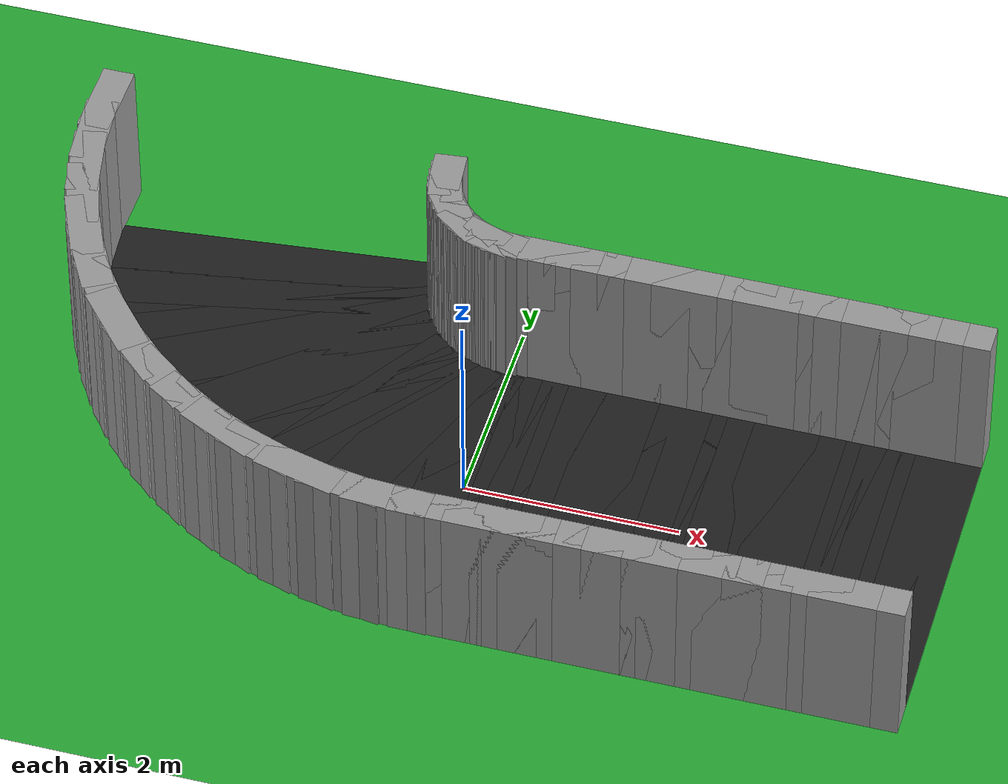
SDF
<sdf version="1.6">
 <world name="loop_extreme">
  <include><uri>model://sun</uri></include>
  <model name="ground_plane">
   <static>true</static>
   <link name="link">
    <collision name="collision">
     <surface><friction><ode><mu>100</mu><mu2>50</mu2></ode></friction></surface>
     <geometry><plane><normal>0 0 1</normal><size>120 120</size></plane></geometry>
    </collision>
    <visual name="visual">
     <geometry><plane><normal>0 0 1</normal><size>120 120</size></plane></geometry>
     <material>
      <script><uri>file://media/materials/scripts/gazebo.material</uri><name>Gazebo/Green</name></script>
     </material>
    </visual>
   </link>
  </model>
  <model name="asphalt_0">
   <static>true</static>
   <pose>0.125 0.000 0.005 0 0 0.00000</pose>
   <link name="link">
    <visual name="visual">
     <geometry><box><size>0.610 3.000 0.010</size></box></geometry>
     <material>
      <script><uri>file://media/materials/scripts/gazebo.material</uri><name>Gazebo/Black</name></script>
     </material>
    </visual>
   </link>
  </model>
  <model name="curbL_0">
   <static>true</static>
   <pose>0.125 1.650 0.750 0 0 0.00000</pose>
   <link name="link">
    <collision name="collision"><geometry><box><size>0.610 0.300 1.500</size></box></geometry></collision>
    <visual name="visual">
     <geometry><box><size>0.610 0.300 1.500</size></box></geometry>
     <material>
      <script><uri>file://media/materials/scripts/gazebo.material</uri><name>Gazebo/Grey</name></script>
     </material>
    </visual>
   </link>
  </model>
  <model name="curbR_0">
   <static>true</static>
   <pose>0.125 -1.650 0.750 0 0 0.00000</pose>
   <link name="link">
    <collision name="collision"><geometry><box><size>0.610 0.300 1.500</size></box></geometry></collision>
    <visual name="visual">
     <geometry><box><size>0.610 0.300 1.500</size></box></geometry>
     <material>
      <script><uri>file://media/materials/scripts/gazebo.material</uri><name>Gazebo/Grey</name></script>
     </material>
    </visual>
   </link>
  </model>
  <model name="asphalt_1">
   <static>true</static>
   <pose>0.375 0.000 0.005 0 0 0.00000</pose>
   <link name="link">
    <visual name="visual">
     <geometry><box><size>0.610 3.000 0.010</size></box></geometry>
     <material>
      <script><uri>file://media/materials/scripts/gazebo.material</uri><name>Gazebo/Black</name></script>
     </material>
    </visual>
   </link>
  </model>
  <model name="curbL_1">
   <static>true</static>
   <pose>0.375 1.650 0.750 0 0 0.00000</pose>
   <link name="link">
    <collision name="collision"><geometry><box><size>0.610 0.300 1.500</size></box></geometry></collision>
    <visual name="visual">
     <geometry><box><size>0.610 0.300 1.500</size></box></geometry>
     <material>
      <script><uri>file://media/materials/scripts/gazebo.material</uri><name>Gazebo/Grey</name></script>
     </material>
    </visual>
   </link>
  </model>
  <model name="curbR_1">
   <static>true</static>
   <pose>0.375 -1.650 0.750 0 0 0.00000</pose>
   <link name="link">
    <collision name="collision"><geometry><box><size>0.610 0.300 1.500</size></box></geometry></collision>
    <visual name="visual">
     <geometry><box><size>0.610 0.300 1.500</size></box></geometry>
     <material>
      <script><uri>file://media/materials/scripts/gazebo.material</uri><name>Gazebo/Grey</name></script>
     </material>
    </visual>
   </link>
  </model>
  <model name="asphalt_2">
   <static>true</static>
   <pose>0.625 0.000 0.005 0 0 0.00000</pose>
   <link name="link">
    <visual name="visual">
     <geometry><box><size>0.610 3.000 0.010</size></box></geometry>
     <material>
      <script><uri>file://media/materials/scripts/gazebo.material</uri><name>Gazebo/Black</name></script>
     </material>
    </visual>
   </link>
  </model>
  <model name="curbL_2">
   <static>true</static>
   <pose>0.625 1.650 0.750 0 0 0.00000</pose>
   <link name="link">
    <collision name="collision"><geometry><box><size>0.610 0.300 1.500</size></box></geometry></collision>
    <visual name="visual">
     <geometry><box><size>0.610 0.300 1.500</size></box></geometry>
     <material>
      <script><uri>file://media/materials/scripts/gazebo.material</uri><name>Gazebo/Grey</name></script>
     </material>
    </visual>
   </link>
  </model>
  <model name="curbR_2">
   <static>true</static>
   <pose>0.625 -1.650 0.750 0 0 0.00000</pose>
   <link name="link">
    <collision name="collision"><geometry><box><size>0.610 0.300 1.500</size></box></geometry></collision>
    <visual name="visual">
     <geometry><box><size>0.610 0.300 1.500</size></box></geometry>
     <material>
      <script><uri>file://media/materials/scripts/gazebo.material</uri><name>Gazebo/Grey</name></script>
     </material>
    </visual>
   </link>
  </model>
  <model name="asphalt_3">
   <static>true</static>
   <pose>0.875 0.000 0.005 0 0 0.00000</pose>
   <link name="link">
    <visual name="visual">
     <geometry><box><size>0.610 3.000 0.010</size></box></geometry>
     <material>
      <script><uri>file://media/materials/scripts/gazebo.material</uri><name>Gazebo/Black</name></script>
     </material>
    </visual>
   </link>
  </model>
  <model name="curbL_3">
   <static>true</static>
   <pose>0.875 1.650 0.750 0 0 0.00000</pose>
   <link name="link">
    <collision name="collision"><geometry><box><size>0.610 0.300 1.500</size></box></geometry></collision>
    <visual name="visual">
     <geometry><box><size>0.610 0.300 1.500</size></box></geometry>
     <material>
      <script><uri>file://media/materials/scripts/gazebo.material</uri><name>Gazebo/Grey</name></script>
     </material>
    </visual>
   </link>
  </model>
  <model name="curbR_3">
   <static>true</static>
   <pose>0.875 -1.650 0.750 0 0 0.00000</pose>
   <link name="link">
    <collision name="collision"><geometry><box><size>0.610 0.300 1.500</size></box></geometry></collision>
    <visual name="visual">
     <geometry><box><size>0.610 0.300 1.500</size></box></geometry>
     <material>
      <script><uri>file://media/materials/scripts/gazebo.material</uri><name>Gazebo/Grey</name></script>
     </material>
    </visual>
   </link>
  </model>
  <model name="asphalt_4">
   <static>true</static>
   <pose>1.125 0.000 0.005 0 0 0.00000</pose>
   <link name="link">
    <visual name="visual">
     <geometry><box><size>0.610 3.000 0.010</size></box></geometry>
     <material>
      <script><uri>file://media/materials/scripts/gazebo.material</uri><name>Gazebo/Black</name></script>
     </material>
    </visual>
   </link>
  </model>
  <model name="curbL_4">
   <static>true</static>
   <pose>1.125 1.650 0.750 0 0 0.00000</pose>
   <link name="link">
    <collision name="collision"><geometry><box><size>0.610 0.300 1.500</size></box></geometry></collision>
    <visual name="visual">
     <geometry><box><size>0.610 0.300 1.500</size></box></geometry>
     <material>
      <script><uri>file://media/materials/scripts/gazebo.material</uri><name>Gazebo/Grey</name></script>
     </material>
    </visual>
   </link>
  </model>
  <model name="curbR_4">
   <static>true</static>
   <pose>1.125 -1.650 0.750 0 0 0.00000</pose>
   <link name="link">
    <collision name="collision"><geometry><box><size>0.610 0.300 1.500</size></box></geometry></collision>
    <visual name="visual">
     <geometry><box><size>0.610 0.300 1.500</size></box></geometry>
     <material>
      <script><uri>file://media/materials/scripts/gazebo.material</uri><name>Gazebo/Grey</name></script>
     </material>
    </visual>
   </link>
  </model>
  <model name="asphalt_5">
   <static>true</static>
   <pose>1.375 0.000 0.005 0 0 0.00000</pose>
   <link name="link">
    <visual name="visual">
     <geometry><box><size>0.610 3.000 0.010</size></box></geometry>
     <material>
      <script><uri>file://media/materials/scripts/gazebo.material</uri><name>Gazebo/Black</name></script>
     </material>
    </visual>
   </link>
  </model>
  <model name="curbL_5">
   <static>true</static>
   <pose>1.375 1.650 0.750 0 0 0.00000</pose>
   <link name="link">
    <collision name="collision"><geometry><box><size>0.610 0.300 1.500</size></box></geometry></collision>
    <visual name="visual">
     <geometry><box><size>0.610 0.300 1.500</size></box></geometry>
     <material>
      <script><uri>file://media/materials/scripts/gazebo.material</uri><name>Gazebo/Grey</name></script>
     </material>
    </visual>
   </link>
  </model>
  <model name="curbR_5">
   <static>true</static>
   <pose>1.375 -1.650 0.750 0 0 0.00000</pose>
   <link name="link">
    <collision name="collision"><geometry><box><size>0.610 0.300 1.500</size></box></geometry></collision>
    <visual name="visual">
     <geometry><box><size>0.610 0.300 1.500</size></box></geometry>
     <material>
      <script><uri>file://media/materials/scripts/gazebo.material</uri><name>Gazebo/Grey</name></script>
     </material>
    </visual>
   </link>
  </model>
  <model name="asphalt_6">
   <static>true</static>
   <pose>1.625 0.000 0.005 0 0 0.00000</pose>
   <link name="link">
    <visual name="visual">
     <geometry><box><size>0.610 3.000 0.010</size></box></geometry>
     <material>
      <script><uri>file://media/materials/scripts/gazebo.material</uri><name>Gazebo/Black</name></script>
     </material>
    </visual>
   </link>
  </model>
  <model name="curbL_6">
   <static>true</static>
   <pose>1.625 1.650 0.750 0 0 0.00000</pose>
   <link name="link">
    <collision name="collision"><geometry><box><size>0.610 0.300 1.500</size></box></geometry></collision>
    <visual name="visual">
     <geometry><box><size>0.610 0.300 1.500</size></box></geometry>
     <material>
      <script><uri>file://media/materials/scripts/gazebo.material</uri><name>Gazebo/Grey</name></script>
     </material>
    </visual>
   </link>
  </model>
  <model name="curbR_6">
   <static>true</static>
   <pose>1.625 -1.650 0.750 0 0 0.00000</pose>
   <link name="link">
    <collision name="collision"><geometry><box><size>0.610 0.300 1.500</size></box></geometry></collision>
    <visual name="visual">
     <geometry><box><size>0.610 0.300 1.500</size></box></geometry>
     <material>
      <script><uri>file://media/materials/scripts/gazebo.material</uri><name>Gazebo/Grey</name></script>
     </material>
    </visual>
   </link>
  </model>
  <model name="asphalt_7">
   <static>true</static>
   <pose>1.875 0.000 0.005 0 0 0.00000</pose>
   <link name="link">
    <visual name="visual">
     <geometry><box><size>0.610 3.000 0.010</size></box></geometry>
     <material>
      <script><uri>file://media/materials/scripts/gazebo.material</uri><name>Gazebo/Black</name></script>
     </material>
    </visual>
   </link>
  </model>
  <model name="curbL_7">
   <static>true</static>
   <pose>1.875 1.650 0.750 0 0 0.00000</pose>
   <link name="link">
    <collision name="collision"><geometry><box><size>0.610 0.300 1.500</size></box></geometry></collision>
    <visual name="visual">
     <geometry><box><size>0.610 0.300 1.500</size></box></geometry>
     <material>
      <script><uri>file://media/materials/scripts/gazebo.material</uri><name>Gazebo/Grey</name></script>
     </material>
    </visual>
   </link>
  </model>
  <model name="curbR_7">
   <static>true</static>
   <pose>1.875 -1.650 0.750 0 0 0.00000</pose>
   <link name="link">
    <collision name="collision"><geometry><box><size>0.610 0.300 1.500</size></box></geometry></collision>
    <visual name="visual">
     <geometry><box><size>0.610 0.300 1.500</size></box></geometry>
     <material>
      <script><uri>file://media/materials/scripts/gazebo.material</uri><name>Gazebo/Grey</name></script>
     </material>
    </visual>
   </link>
  </model>
  <model name="asphalt_8">
   <static>true</static>
   <pose>2.125 0.000 0.005 0 0 0.00000</pose>
   <link name="link">
    <visual name="visual">
     <geometry><box><size>0.610 3.000 0.010</size></box></geometry>
     <material>
      <script><uri>file://media/materials/scripts/gazebo.material</uri><name>Gazebo/Black</name></script>
     </material>
    </visual>
   </link>
  </model>
  <model name="curbL_8">
   <static>true</static>
   <pose>2.125 1.650 0.750 0 0 0.00000</pose>
   <link name="link">
    <collision name="collision"><geometry><box><size>0.610 0.300 1.500</size></box></geometry></collision>
    <visual name="visual">
     <geometry><box><size>0.610 0.300 1.500</size></box></geometry>
     <material>
      <script><uri>file://media/materials/scripts/gazebo.material</uri><name>Gazebo/Grey</name></script>
     </material>
    </visual>
   </link>
  </model>
  <model name="curbR_8">
   <static>true</static>
   <pose>2.125 -1.650 0.750 0 0 0.00000</pose>
   <link name="link">
    <collision name="collision"><geometry><box><size>0.610 0.300 1.500</size></box></geometry></collision>
    <visual name="visual">
     <geometry><box><size>0.610 0.300 1.500</size></box></geometry>
     <material>
      <script><uri>file://media/materials/scripts/gazebo.material</uri><name>Gazebo/Grey</name></script>
     </material>
    </visual>
   </link>
  </model>
  <model name="asphalt_9">
   <static>true</static>
   <pose>2.375 0.000 0.005 0 0 0.00000</pose>
   <link name="link">
    <visual name="visual">
     <geometry><box><size>0.610 3.000 0.010</size></box></geometry>
     <material>
      <script><uri>file://media/materials/scripts/gazebo.material</uri><name>Gazebo/Black</name></script>
     </material>
    </visual>
   </link>
  </model>
  <model name="curbL_9">
   <static>true</static>
   <pose>2.375 1.650 0.750 0 0 0.00000</pose>
   <link name="link">
    <collision name="collision"><geometry><box><size>0.610 0.300 1.500</size></box></geometry></collision>
    <visual name="visual">
     <geometry><box><size>0.610 0.300 1.500</size></box></geometry>
     <material>
      <script><uri>file://media/materials/scripts/gazebo.material</uri><name>Gazebo/Grey</name></script>
     </material>
    </visual>
   </link>
  </model>
  <model name="curbR_9">
   <static>true</static>
   <pose>2.375 -1.650 0.750 0 0 0.00000</pose>
   <link name="link">
    <collision name="collision"><geometry><box><size>0.610 0.300 1.500</size></box></geometry></collision>
    <visual name="visual">
     <geometry><box><size>0.610 0.300 1.500</size></box></geometry>
     <material>
      <script><uri>file://media/materials/scripts/gazebo.material</uri><name>Gazebo/Grey</name></script>
     </material>
    </visual>
   </link>
  </model>
  <model name="asphalt_10">
   <static>true</static>
   <pose>2.625 0.000 0.005 0 0 0.00000</pose>
   <link name="link">
    <visual name="visual">
     <geometry><box><size>0.610 3.000 0.010</size></box></geometry>
     <material>
      <script><uri>file://media/materials/scripts/gazebo.material</uri><name>Gazebo/Black</name></script>
     </material>
    </visual>
   </link>
  </model>
  <model name="curbL_10">
   <static>true</static>
   <pose>2.625 1.650 0.750 0 0 0.00000</pose>
   <link name="link">
    <collision name="collision"><geometry><box><size>0.610 0.300 1.500</size></box></geometry></collision>
    <visual name="visual">
     <geometry><box><size>0.610 0.300 1.500</size></box></geometry>
     <material>
      <script><uri>file://media/materials/scripts/gazebo.material</uri><name>Gazebo/Grey</name></script>
     </material>
    </visual>
   </link>
  </model>
  <model name="curbR_10">
   <static>true</static>
   <pose>2.625 -1.650 0.750 0 0 0.00000</pose>
   <link name="link">
    <collision name="collision"><geometry><box><size>0.610 0.300 1.500</size></box></geometry></collision>
    <visual name="visual">
     <geometry><box><size>0.610 0.300 1.500</size></box></geometry>
     <material>
      <script><uri>file://media/materials/scripts/gazebo.material</uri><name>Gazebo/Grey</name></script>
     </material>
    </visual>
   </link>
  </model>
  <model name="asphalt_11">
   <static>true</static>
   <pose>2.875 0.000 0.005 0 0 0.00000</pose>
   <link name="link">
    <visual name="visual">
     <geometry><box><size>0.610 3.000 0.010</size></box></geometry>
     <material>
      <script><uri>file://media/materials/scripts/gazebo.material</uri><name>Gazebo/Black</name></script>
     </material>
    </visual>
   </link>
  </model>
  <model name="curbL_11">
   <static>true</static>
   <pose>2.875 1.650 0.750 0 0 0.00000</pose>
   <link name="link">
    <collision name="collision"><geometry><box><size>0.610 0.300 1.500</size></box></geometry></collision>
    <visual name="visual">
     <geometry><box><size>0.610 0.300 1.500</size></box></geometry>
     <material>
      <script><uri>file://media/materials/scripts/gazebo.material</uri><name>Gazebo/Grey</name></script>
     </material>
    </visual>
   </link>
  </model>
  <model name="curbR_11">
   <static>true</static>
   <pose>2.875 -1.650 0.750 0 0 0.00000</pose>
   <link name="link">
    <collision name="collision"><geometry><box><size>0.610 0.300 1.500</size></box></geometry></collision>
    <visual name="visual">
     <geometry><box><size>0.610 0.300 1.500</size></box></geometry>
     <material>
      <script><uri>file://media/materials/scripts/gazebo.material</uri><name>Gazebo/Grey</name></script>
     </material>
    </visual>
   </link>
  </model>
  <model name="asphalt_12">
   <static>true</static>
   <pose>3.125 0.000 0.005 0 0 0.00000</pose>
   <link name="link">
    <visual name="visual">
     <geometry><box><size>0.610 3.000 0.010</size></box></geometry>
     <material>
      <script><uri>file://media/materials/scripts/gazebo.material</uri><name>Gazebo/Black</name></script>
     </material>
    </visual>
   </link>
  </model>
  <model name="curbL_12">
   <static>true</static>
   <pose>3.125 1.650 0.750 0 0 0.00000</pose>
   <link name="link">
    <collision name="collision"><geometry><box><size>0.610 0.300 1.500</size></box></geometry></collision>
    <visual name="visual">
     <geometry><box><size>0.610 0.300 1.500</size></box></geometry>
     <material>
      <script><uri>file://media/materials/scripts/gazebo.material</uri><name>Gazebo/Grey</name></script>
     </material>
    </visual>
   </link>
  </model>
  <model name="curbR_12">
   <static>true</static>
   <pose>3.125 -1.650 0.750 0 0 0.00000</pose>
   <link name="link">
    <collision name="collision"><geometry><box><size>0.610 0.300 1.500</size></box></geometry></collision>
    <visual name="visual">
     <geometry><box><size>0.610 0.300 1.500</size></box></geometry>
     <material>
      <script><uri>file://media/materials/scripts/gazebo.material</uri><name>Gazebo/Grey</name></script>
     </material>
    </visual>
   </link>
  </model>
  <model name="asphalt_13">
   <static>true</static>
   <pose>3.375 0.000 0.005 0 0 0.00000</pose>
   <link name="link">
    <visual name="visual">
     <geometry><box><size>0.610 3.000 0.010</size></box></geometry>
     <material>
      <script><uri>file://media/materials/scripts/gazebo.material</uri><name>Gazebo/Black</name></script>
     </material>
    </visual>
   </link>
  </model>
  <model name="curbL_13">
   <static>true</static>
   <pose>3.375 1.650 0.750 0 0 0.00000</pose>
   <link name="link">
    <collision name="collision"><geometry><box><size>0.610 0.300 1.500</size></box></geometry></collision>
    <visual name="visual">
     <geometry><box><size>0.610 0.300 1.500</size></box></geometry>
     <material>
      <script><uri>file://media/materials/scripts/gazebo.material</uri><name>Gazebo/Grey</name></script>
     </material>
    </visual>
   </link>
  </model>
  <model name="curbR_13">
   <static>true</static>
   <pose>3.375 -1.650 0.750 0 0 0.00000</pose>
   <link name="link">
    <collision name="collision"><geometry><box><size>0.610 0.300 1.500</size></box></geometry></collision>
    <visual name="visual">
     <geometry><box><size>0.610 0.300 1.500</size></box></geometry>
     <material>
      <script><uri>file://media/materials/scripts/gazebo.material</uri><name>Gazebo/Grey</name></script>
     </material>
    </visual>
   </link>
  </model>
  <model name="asphalt_14">
   <static>true</static>
   <pose>3.625 0.000 0.005 0 0 0.00000</pose>
   <link name="link">
    <visual name="visual">
     <geometry><box><size>0.610 3.000 0.010</size></box></geometry>
     <material>
      <script><uri>file://media/materials/scripts/gazebo.material</uri><name>Gazebo/Black</name></script>
     </material>
    </visual>
   </link>
  </model>
  <model name="curbL_14">
   <static>true</static>
   <pose>3.625 1.650 0.750 0 0 0.00000</pose>
   <link name="link">
    <collision name="collision"><geometry><box><size>0.610 0.300 1.500</size></box></geometry></collision>
    <visual name="visual">
     <geometry><box><size>0.610 0.300 1.500</size></box></geometry>
     <material>
      <script><uri>file://media/materials/scripts/gazebo.material</uri><name>Gazebo/Grey</name></script>
     </material>
    </visual>
   </link>
  </model>
  <model name="curbR_14">
   <static>true</static>
   <pose>3.625 -1.650 0.750 0 0 0.00000</pose>
   <link name="link">
    <collision name="collision"><geometry><box><size>0.610 0.300 1.500</size></box></geometry></collision>
    <visual name="visual">
     <geometry><box><size>0.610 0.300 1.500</size></box></geometry>
     <material>
      <script><uri>file://media/materials/scripts/gazebo.material</uri><name>Gazebo/Grey</name></script>
     </material>
    </visual>
   </link>
  </model>
  <model name="asphalt_15">
   <static>true</static>
   <pose>3.875 0.000 0.005 0 0 0.00000</pose>
   <link name="link">
    <visual name="visual">
     <geometry><box><size>0.610 3.000 0.010</size></box></geometry>
     <material>
      <script><uri>file://media/materials/scripts/gazebo.material</uri><name>Gazebo/Black</name></script>
     </material>
    </visual>
   </link>
  </model>
  <model name="curbL_15">
   <static>true</static>
   <pose>3.875 1.650 0.750 0 0 0.00000</pose>
   <link name="link">
    <collision name="collision"><geometry><box><size>0.610 0.300 1.500</size></box></geometry></collision>
    <visual name="visual">
     <geometry><box><size>0.610 0.300 1.500</size></box></geometry>
     <material>
      <script><uri>file://media/materials/scripts/gazebo.material</uri><name>Gazebo/Grey</name></script>
     </material>
    </visual>
   </link>
  </model>
  <model name="curbR_15">
   <static>true</static>
   <pose>3.875 -1.650 0.750 0 0 0.00000</pose>
   <link name="link">
    <collision name="collision"><geometry><box><size>0.610 0.300 1.500</size></box></geometry></collision>
    <visual name="visual">
     <geometry><box><size>0.610 0.300 1.500</size></box></geometry>
     <material>
      <script><uri>file://media/materials/scripts/gazebo.material</uri><name>Gazebo/Grey</name></script>
     </material>
    </visual>
   </link>
  </model>
  <model name="asphalt_16">
   <static>true</static>
   <pose>4.125 0.000 0.005 0 0 0.00000</pose>
   <link name="link">
    <visual name="visual">
     <geometry><box><size>0.610 3.000 0.010</size></box></geometry>
     <material>
      <script><uri>file://media/materials/scripts/gazebo.material</uri><name>Gazebo/Black</name></script>
     </material>
    </visual>
   </link>
  </model>
  <model name="curbL_16">
   <static>true</static>
   <pose>4.125 1.650 0.750 0 0 0.00000</pose>
   <link name="link">
    <collision name="collision"><geometry><box><size>0.610 0.300 1.500</size></box></geometry></collision>
    <visual name="visual">
     <geometry><box><size>0.610 0.300 1.500</size></box></geometry>
     <material>
      <script><uri>file://media/materials/scripts/gazebo.material</uri><name>Gazebo/Grey</name></script>
     </material>
    </visual>
   </link>
  </model>
  <model name="curbR_16">
   <static>true</static>
   <pose>4.125 -1.650 0.750 0 0 0.00000</pose>
   <link name="link">
    <collision name="collision"><geometry><box><size>0.610 0.300 1.500</size></box></geometry></collision>
    <visual name="visual">
     <geometry><box><size>0.610 0.300 1.500</size></box></geometry>
     <material>
      <script><uri>file://media/materials/scripts/gazebo.material</uri><name>Gazebo/Grey</name></script>
     </material>
    </visual>
   </link>
  </model>
  <model name="curbR_274">
   <static>true</static>
   <pose>-4.146 2.501 0.750 0 0 -1.57080</pose>
   <link name="link">
    <collision name="collision"><geometry><box><size>0.780 0.300 1.500</size></box></geometry></collision>
    <visual name="visual">
     <geometry><box><size>0.780 0.300 1.500</size></box></geometry>
     <material>
      <script><uri>file://media/materials/scripts/gazebo.material</uri><name>Gazebo/Grey</name></script>
     </material>
    </visual>
   </link>
  </model>
  <model name="asphalt_275">
   <static>true</static>
   <pose>-2.485 2.248 0.005 0 0 -1.46945</pose>
   <link name="link">
    <visual name="visual">
     <geometry><box><size>0.613 3.000 0.010</size></box></geometry>
     <material>
      <script><uri>file://media/materials/scripts/gazebo.material</uri><name>Gazebo/Black</name></script>
     </material>
    </visual>
   </link>
  </model>
  <model name="curbL_275">
   <static>true</static>
   <pose>-0.846 2.415 0.750 0 0 -1.46945</pose>
   <link name="link">
    <collision name="collision"><geometry><box><size>0.446 0.300 1.500</size></box></geometry></collision>
    <visual name="visual">
     <geometry><box><size>0.446 0.300 1.500</size></box></geometry>
     <material>
      <script><uri>file://media/materials/scripts/gazebo.material</uri><name>Gazebo/Grey</name></script>
     </material>
    </visual>
   </link>
  </model>
  <model name="curbR_275">
   <static>true</static>
   <pose>-4.124 2.082 0.750 0 0 -1.46945</pose>
   <link name="link">
    <collision name="collision"><geometry><box><size>0.780 0.300 1.500</size></box></geometry></collision>
    <visual name="visual">
     <geometry><box><size>0.780 0.300 1.500</size></box></geometry>
     <material>
      <script><uri>file://media/materials/scripts/gazebo.material</uri><name>Gazebo/Grey</name></script>
     </material>
    </visual>
   </link>
  </model>
  <model name="asphalt_276">
   <static>true</static>
   <pose>-2.447 1.998 0.005 0 0 -1.36811</pose>
   <link name="link">
    <visual name="visual">
     <geometry><box><size>0.613 3.000 0.010</size></box></geometry>
     <material>
      <script><uri>file://media/materials/scripts/gazebo.material</uri><name>Gazebo/Black</name></script>
     </material>
    </visual>
   </link>
  </model>
  <model name="curbL_276">
   <static>true</static>
   <pose>-0.833 2.330 0.750 0 0 -1.36811</pose>
   <link name="link">
    <collision name="collision"><geometry><box><size>0.446 0.300 1.500</size></box></geometry></collision>
    <visual name="visual">
     <geometry><box><size>0.446 0.300 1.500</size></box></geometry>
     <material>
      <script><uri>file://media/materials/scripts/gazebo.material</uri><name>Gazebo/Grey</name></script>
     </material>
    </visual>
   </link>
  </model>
  <model name="curbR_276">
   <static>true</static>
   <pose>-4.061 1.667 0.750 0 0 -1.36811</pose>
   <link name="link">
    <collision name="collision"><geometry><box><size>0.780 0.300 1.500</size></box></geometry></collision>
    <visual name="visual">
     <geometry><box><size>0.780 0.300 1.500</size></box></geometry>
     <material>
      <script><uri>file://media/materials/scripts/gazebo.material</uri><name>Gazebo/Grey</name></script>
     </material>
    </visual>
   </link>
  </model>
  <model name="asphalt_277">
   <static>true</static>
   <pose>-2.383 1.753 0.005 0 0 -1.26677</pose>
   <link name="link">
    <visual name="visual">
     <geometry><box><size>0.613 3.000 0.010</size></box></geometry>
     <material>
      <script><uri>file://media/materials/scripts/gazebo.material</uri><name>Gazebo/Black</name></script>
     </material>
    </visual>
   </link>
  </model>
  <model name="curbL_277">
   <static>true</static>
   <pose>-0.811 2.247 0.750 0 0 -1.26677</pose>
   <link name="link">
    <collision name="collision"><geometry><box><size>0.446 0.300 1.500</size></box></geometry></collision>
    <visual name="visual">
     <geometry><box><size>0.446 0.300 1.500</size></box></geometry>
     <material>
      <script><uri>file://media/materials/scripts/gazebo.material</uri><name>Gazebo/Grey</name></script>
     </material>
    </visual>
   </link>
  </model>
  <model name="curbR_277">
   <static>true</static>
   <pose>-3.956 1.260 0.750 0 0 -1.26677</pose>
   <link name="link">
    <collision name="collision"><geometry><box><size>0.780 0.300 1.500</size></box></geometry></collision>
    <visual name="visual">
     <geometry><box><size>0.780 0.300 1.500</size></box></geometry>
     <material>
      <script><uri>file://media/materials/scripts/gazebo.material</uri><name>Gazebo/Grey</name></script>
     </material>
    </visual>
   </link>
  </model>
  <model name="asphalt_278">
   <static>true</static>
   <pose>-2.295 1.516 0.005 0 0 -1.16543</pose>
   <link name="link">
    <visual name="visual">
     <geometry><box><size>0.613 3.000 0.010</size></box></geometry>
     <material>
      <script><uri>file://media/materials/scripts/gazebo.material</uri><name>Gazebo/Black</name></script>
     </material>
    </visual>
   </link>
  </model>
  <model name="curbL_278">
   <static>true</static>
   <pose>-0.781 2.166 0.750 0 0 -1.16543</pose>
   <link name="link">
    <collision name="collision"><geometry><box><size>0.446 0.300 1.500</size></box></geometry></collision>
    <visual name="visual">
     <geometry><box><size>0.446 0.300 1.500</size></box></geometry>
     <material>
      <script><uri>file://media/materials/scripts/gazebo.material</uri><name>Gazebo/Grey</name></script>
     </material>
    </visual>
   </link>
  </model>
  <model name="curbR_278">
   <static>true</static>
   <pose>-3.810 0.866 0.750 0 0 -1.16543</pose>
   <link name="link">
    <collision name="collision"><geometry><box><size>0.780 0.300 1.500</size></box></geometry></collision>
    <visual name="visual">
     <geometry><box><size>0.780 0.300 1.500</size></box></geometry>
     <material>
      <script><uri>file://media/materials/scripts/gazebo.material</uri><name>Gazebo/Grey</name></script>
     </material>
    </visual>
   </link>
  </model>
  <model name="asphalt_279">
   <static>true</static>
   <pose>-2.184 1.289 0.005 0 0 -1.06409</pose>
   <link name="link">
    <visual name="visual">
     <geometry><box><size>0.613 3.000 0.010</size></box></geometry>
     <material>
      <script><uri>file://media/materials/scripts/gazebo.material</uri><name>Gazebo/Black</name></script>
     </material>
    </visual>
   </link>
  </model>
  <model name="curbL_279">
   <static>true</static>
   <pose>-0.743 2.089 0.750 0 0 -1.06409</pose>
   <link name="link">
    <collision name="collision"><geometry><box><size>0.446 0.300 1.500</size></box></geometry></collision>
    <visual name="visual">
     <geometry><box><size>0.446 0.300 1.500</size></box></geometry>
     <material>
      <script><uri>file://media/materials/scripts/gazebo.material</uri><name>Gazebo/Grey</name></script>
     </material>
    </visual>
   </link>
  </model>
  <model name="curbR_279">
   <static>true</static>
   <pose>-3.625 0.489 0.750 0 0 -1.06409</pose>
   <link name="link">
    <collision name="collision"><geometry><box><size>0.780 0.300 1.500</size></box></geometry></collision>
    <visual name="visual">
     <geometry><box><size>0.780 0.300 1.500</size></box></geometry>
     <material>
      <script><uri>file://media/materials/scripts/gazebo.material</uri><name>Gazebo/Grey</name></script>
     </material>
    </visual>
   </link>
  </model>
  <model name="asphalt_280">
   <static>true</static>
   <pose>-2.050 1.074 0.005 0 0 -0.96275</pose>
   <link name="link">
    <visual name="visual">
     <geometry><box><size>0.613 3.000 0.010</size></box></geometry>
     <material>
      <script><uri>file://media/materials/scripts/gazebo.material</uri><name>Gazebo/Black</name></script>
     </material>
    </visual>
   </link>
  </model>
  <model name="curbL_280">
   <static>true</static>
   <pose>-0.698 2.016 0.750 0 0 -0.96275</pose>
   <link name="link">
    <collision name="collision"><geometry><box><size>0.446 0.300 1.500</size></box></geometry></collision>
    <visual name="visual">
     <geometry><box><size>0.446 0.300 1.500</size></box></geometry>
     <material>
      <script><uri>file://media/materials/scripts/gazebo.material</uri><name>Gazebo/Grey</name></script>
     </material>
    </visual>
   </link>
  </model>
  <model name="curbR_280">
   <static>true</static>
   <pose>-3.403 0.133 0.750 0 0 -0.96275</pose>
   <link name="link">
    <collision name="collision"><geometry><box><size>0.780 0.300 1.500</size></box></geometry></collision>
    <visual name="visual">
     <geometry><box><size>0.780 0.300 1.500</size></box></geometry>
     <material>
      <script><uri>file://media/materials/scripts/gazebo.material</uri><name>Gazebo/Grey</name></script>
     </material>
    </visual>
   </link>
  </model>
  <model name="asphalt_281">
   <static>true</static>
   <pose>-1.895 0.874 0.005 0 0 -0.86140</pose>
   <link name="link">
    <visual name="visual">
     <geometry><box><size>0.613 3.000 0.010</size></box></geometry>
     <material>
      <script><uri>file://media/materials/scripts/gazebo.material</uri><name>Gazebo/Black</name></script>
     </material>
    </visual>
   </link>
  </model>
  <model name="curbL_281">
   <static>true</static>
   <pose>-0.645 1.947 0.750 0 0 -0.86140</pose>
   <link name="link">
    <collision name="collision"><geometry><box><size>0.446 0.300 1.500</size></box></geometry></collision>
    <visual name="visual">
     <geometry><box><size>0.446 0.300 1.500</size></box></geometry>
     <material>
      <script><uri>file://media/materials/scripts/gazebo.material</uri><name>Gazebo/Grey</name></script>
     </material>
    </visual>
   </link>
  </model>
  <model name="curbR_281">
   <static>true</static>
   <pose>-3.146 -0.199 0.750 0 0 -0.86140</pose>
   <link name="link">
    <collision name="collision"><geometry><box><size>0.780 0.300 1.500</size></box></geometry></collision>
    <visual name="visual">
     <geometry><box><size>0.780 0.300 1.500</size></box></geometry>
     <material>
      <script><uri>file://media/materials/scripts/gazebo.material</uri><name>Gazebo/Grey</name></script>
     </material>
    </visual>
   </link>
  </model>
  <model name="asphalt_282">
   <static>true</static>
   <pose>-1.721 0.691 0.005 0 0 -0.76006</pose>
   <link name="link">
    <visual name="visual">
     <geometry><box><size>0.613 3.000 0.010</size></box></geometry>
     <material>
      <script><uri>file://media/materials/scripts/gazebo.material</uri><name>Gazebo/Black</name></script>
     </material>
    </visual>
   </link>
  </model>
  <model name="curbL_282">
   <static>true</static>
   <pose>-0.586 1.885 0.750 0 0 -0.76006</pose>
   <link name="link">
    <collision name="collision"><geometry><box><size>0.446 0.300 1.500</size></box></geometry></collision>
    <visual name="visual">
     <geometry><box><size>0.446 0.300 1.500</size></box></geometry>
     <material>
      <script><uri>file://media/materials/scripts/gazebo.material</uri><name>Gazebo/Grey</name></script>
     </material>
    </visual>
   </link>
  </model>
  <model name="curbR_282">
   <static>true</static>
   <pose>-2.856 -0.504 0.750 0 0 -0.76006</pose>
   <link name="link">
    <collision name="collision"><geometry><box><size>0.780 0.300 1.500</size></box></geometry></collision>
    <visual name="visual">
     <geometry><box><size>0.780 0.300 1.500</size></box></geometry>
     <material>
      <script><uri>file://media/materials/scripts/gazebo.material</uri><name>Gazebo/Grey</name></script>
     </material>
    </visual>
   </link>
  </model>
  <model name="asphalt_283">
   <static>true</static>
   <pose>-1.529 0.526 0.005 0 0 -0.65872</pose>
   <link name="link">
    <visual name="visual">
     <geometry><box><size>0.613 3.000 0.010</size></box></geometry>
     <material>
      <script><uri>file://media/materials/scripts/gazebo.material</uri><name>Gazebo/Black</name></script>
     </material>
    </visual>
   </link>
  </model>
  <model name="curbL_283">
   <static>true</static>
   <pose>-0.520 1.829 0.750 0 0 -0.65872</pose>
   <link name="link">
    <collision name="collision"><geometry><box><size>0.446 0.300 1.500</size></box></geometry></collision>
    <visual name="visual">
     <geometry><box><size>0.446 0.300 1.500</size></box></geometry>
     <material>
      <script><uri>file://media/materials/scripts/gazebo.material</uri><name>Gazebo/Grey</name></script>
     </material>
    </visual>
   </link>
  </model>
  <model name="curbR_283">
   <static>true</static>
   <pose>-2.538 -0.777 0.750 0 0 -0.65872</pose>
   <link name="link">
    <collision name="collision"><geometry><box><size>0.780 0.300 1.500</size></box></geometry></collision>
    <visual name="visual">
     <geometry><box><size>0.780 0.300 1.500</size></box></geometry>
     <material>
      <script><uri>file://media/materials/scripts/gazebo.material</uri><name>Gazebo/Grey</name></script>
     </material>
    </visual>
   </link>
  </model>
  <model name="asphalt_284">
   <static>true</static>
   <pose>-1.321 0.381 0.005 0 0 -0.55738</pose>
   <link name="link">
    <visual name="visual">
     <geometry><box><size>0.613 3.000 0.010</size></box></geometry>
     <material>
      <script><uri>file://media/materials/scripts/gazebo.material</uri><name>Gazebo/Black</name></script>
     </material>
    </visual>
   </link>
  </model>
  <model name="curbL_284">
   <static>true</static>
   <pose>-0.450 1.780 0.750 0 0 -0.55738</pose>
   <link name="link">
    <collision name="collision"><geometry><box><size>0.446 0.300 1.500</size></box></geometry></collision>
    <visual name="visual">
     <geometry><box><size>0.446 0.300 1.500</size></box></geometry>
     <material>
      <script><uri>file://media/materials/scripts/gazebo.material</uri><name>Gazebo/Grey</name></script>
     </material>
    </visual>
   </link>
  </model>
  <model name="curbR_284">
   <static>true</static>
   <pose>-2.193 -1.017 0.750 0 0 -0.55738</pose>
   <link name="link">
    <collision name="collision"><geometry><box><size>0.780 0.300 1.500</size></box></geometry></collision>
    <visual name="visual">
     <geometry><box><size>0.780 0.300 1.500</size></box></geometry>
     <material>
      <script><uri>file://media/materials/scripts/gazebo.material</uri><name>Gazebo/Grey</name></script>
     </material>
    </visual>
   </link>
  </model>
  <model name="asphalt_285">
   <static>true</static>
   <pose>-1.100 0.258 0.005 0 0 -0.45604</pose>
   <link name="link">
    <visual name="visual">
     <geometry><box><size>0.613 3.000 0.010</size></box></geometry>
     <material>
      <script><uri>file://media/materials/scripts/gazebo.material</uri><name>Gazebo/Black</name></script>
     </material>
    </visual>
   </link>
  </model>
  <model name="curbL_285">
   <static>true</static>
   <pose>-0.374 1.738 0.750 0 0 -0.45604</pose>
   <link name="link">
    <collision name="collision"><geometry><box><size>0.446 0.300 1.500</size></box></geometry></collision>
    <visual name="visual">
     <geometry><box><size>0.446 0.300 1.500</size></box></geometry>
     <material>
      <script><uri>file://media/materials/scripts/gazebo.material</uri><name>Gazebo/Grey</name></script>
     </material>
    </visual>
   </link>
  </model>
  <model name="curbR_285">
   <static>true</static>
   <pose>-1.826 -1.221 0.750 0 0 -0.45604</pose>
   <link name="link">
    <collision name="collision"><geometry><box><size>0.780 0.300 1.500</size></box></geometry></collision>
    <visual name="visual">
     <geometry><box><size>0.780 0.300 1.500</size></box></geometry>
     <material>
      <script><uri>file://media/materials/scripts/gazebo.material</uri><name>Gazebo/Grey</name></script>
     </material>
    </visual>
   </link>
  </model>
  <model name="asphalt_286">
   <static>true</static>
   <pose>-0.868 0.159 0.005 0 0 -0.35470</pose>
   <link name="link">
    <visual name="visual">
     <geometry><box><size>0.613 3.000 0.010</size></box></geometry>
     <material>
      <script><uri>file://media/materials/scripts/gazebo.material</uri><name>Gazebo/Black</name></script>
     </material>
    </visual>
   </link>
  </model>
  <model name="curbL_286">
   <static>true</static>
   <pose>-0.295 1.704 0.750 0 0 -0.35470</pose>
   <link name="link">
    <collision name="collision"><geometry><box><size>0.446 0.300 1.500</size></box></geometry></collision>
    <visual name="visual">
     <geometry><box><size>0.446 0.300 1.500</size></box></geometry>
     <material>
      <script><uri>file://media/materials/scripts/gazebo.material</uri><name>Gazebo/Grey</name></script>
     </material>
    </visual>
   </link>
  </model>
  <model name="curbR_286">
   <static>true</static>
   <pose>-1.440 -1.387 0.750 0 0 -0.35470</pose>
   <link name="link">
    <collision name="collision"><geometry><box><size>0.780 0.300 1.500</size></box></geometry></collision>
    <visual name="visual">
     <geometry><box><size>0.780 0.300 1.500</size></box></geometry>
     <material>
      <script><uri>file://media/materials/scripts/gazebo.material</uri><name>Gazebo/Grey</name></script>
     </material>
    </visual>
   </link>
  </model>
  <model name="asphalt_287">
   <static>true</static>
   <pose>-0.626 0.083 0.005 0 0 -0.25335</pose>
   <link name="link">
    <visual name="visual">
     <geometry><box><size>0.613 3.000 0.010</size></box></geometry>
     <material>
      <script><uri>file://media/materials/scripts/gazebo.material</uri><name>Gazebo/Black</name></script>
     </material>
    </visual>
   </link>
  </model>
  <model name="curbL_287">
   <static>true</static>
   <pose>-0.213 1.678 0.750 0 0 -0.25335</pose>
   <link name="link">
    <collision name="collision"><geometry><box><size>0.446 0.300 1.500</size></box></geometry></collision>
    <visual name="visual">
     <geometry><box><size>0.446 0.300 1.500</size></box></geometry>
     <material>
      <script><uri>file://media/materials/scripts/gazebo.material</uri><name>Gazebo/Grey</name></script>
     </material>
    </visual>
   </link>
  </model>
  <model name="curbR_287">
   <static>true</static>
   <pose>-1.039 -1.512 0.750 0 0 -0.25335</pose>
   <link name="link">
    <collision name="collision"><geometry><box><size>0.780 0.300 1.500</size></box></geometry></collision>
    <visual name="visual">
     <geometry><box><size>0.780 0.300 1.500</size></box></geometry>
     <material>
      <script><uri>file://media/materials/scripts/gazebo.material</uri><name>Gazebo/Grey</name></script>
     </material>
    </visual>
   </link>
  </model>
  <model name="asphalt_288">
   <static>true</static>
   <pose>-0.378 0.032 0.005 0 0 -0.15201</pose>
   <link name="link">
    <visual name="visual">
     <geometry><box><size>0.613 3.000 0.010</size></box></geometry>
     <material>
      <script><uri>file://media/materials/scripts/gazebo.material</uri><name>Gazebo/Black</name></script>
     </material>
    </visual>
   </link>
  </model>
  <model name="curbL_288">
   <static>true</static>
   <pose>-0.129 1.661 0.750 0 0 -0.15201</pose>
   <link name="link">
    <collision name="collision"><geometry><box><size>0.446 0.300 1.500</size></box></geometry></collision>
    <visual name="visual">
     <geometry><box><size>0.446 0.300 1.500</size></box></geometry>
     <material>
      <script><uri>file://media/materials/scripts/gazebo.material</uri><name>Gazebo/Grey</name></script>
     </material>
    </visual>
   </link>
  </model>
  <model name="curbR_288">
   <static>true</static>
   <pose>-0.628 -1.597 0.750 0 0 -0.15201</pose>
   <link name="link">
    <collision name="collision"><geometry><box><size>0.780 0.300 1.500</size></box></geometry></collision>
    <visual name="visual">
     <geometry><box><size>0.780 0.300 1.500</size></box></geometry>
     <material>
      <script><uri>file://media/materials/scripts/gazebo.material</uri><name>Gazebo/Grey</name></script>
     </material>
    </visual>
   </link>
  </model>
  <model name="asphalt_289">
   <static>true</static>
   <pose>-0.127 0.006 0.005 0 0 -0.05067</pose>
   <link name="link">
    <visual name="visual">
     <geometry><box><size>0.613 3.000 0.010</size></box></geometry>
     <material>
      <script><uri>file://media/materials/scripts/gazebo.material</uri><name>Gazebo/Black</name></script>
     </material>
    </visual>
   </link>
  </model>
  <model name="curbL_289">
   <static>true</static>
   <pose>-0.043 1.652 0.750 0 0 -0.05067</pose>
   <link name="link">
    <collision name="collision"><geometry><box><size>0.446 0.300 1.500</size></box></geometry></collision>
    <visual name="visual">
     <geometry><box><size>0.446 0.300 1.500</size></box></geometry>
     <material>
      <script><uri>file://media/materials/scripts/gazebo.material</uri><name>Gazebo/Grey</name></script>
     </material>
    </visual>
   </link>
  </model>
  <model name="curbR_289">
   <static>true</static>
   <pose>-0.210 -1.639 0.750 0 0 -0.05067</pose>
   <link name="link">
    <collision name="collision"><geometry><box><size>0.780 0.300 1.500</size></box></geometry></collision>
    <visual name="visual">
     <geometry><box><size>0.780 0.300 1.500</size></box></geometry>
     <material>
      <script><uri>file://media/materials/scripts/gazebo.material</uri><name>Gazebo/Grey</name></script>
     </material>
    </visual>
   </link>
  </model>
 </world>
</sdf>
